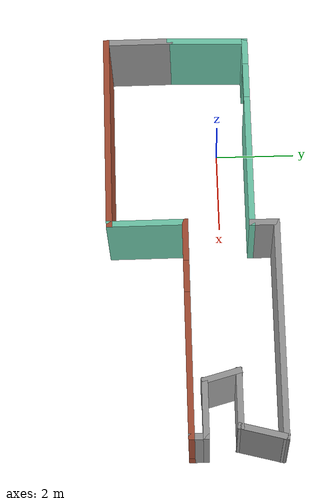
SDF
<?xml version='1.0'?>
<sdf version='1.6'>
  <model name='home'>
    <pose frame=''>2.93952 -0.669794 0 0 -0 0</pose>
    <link name='Wall_0'>
      <collision name='Wall_0_Collision'>
        <geometry>
          <box>
            <size>1.75 0.15 2.5</size>
          </box>
        </geometry>
        <pose frame=''>0 0 1.25 0 -0 0</pose>
      </collision>
      <visual name='Wall_0_Visual'>
        <pose frame=''>0 0 1.25 0 -0 0</pose>
        <geometry>
          <box>
            <size>1.75 0.15 2.5</size>
          </box>
        </geometry>
        <material>
          <script>
            <uri>file://media/materials/scripts/gazebo.material</uri>
            <name>Gazebo/Grey</name>
          </script>
          <ambient>1 1 1 1</ambient>
        </material>
        <meta>
          <layer>0</layer>
        </meta>
      </visual>
      <pose frame=''>-5.13952 -1.25021 0 0 0 -1.5708</pose>
    </link>
    <link name='Wall_1'>
      <collision name='Wall_1_Collision'>
        <geometry>
          <box>
            <size>5 0.15 2.5</size>
          </box>
        </geometry>
        <pose frame=''>0 0 1.25 0 -0 0</pose>
      </collision>
      <visual name='Wall_1_Visual'>
        <pose frame=''>0 0 1.25 0 -0 0</pose>
        <geometry>
          <box>
            <size>5 0.15 2.5</size>
          </box>
        </geometry>
        <material>
          <script>
            <uri>file://media/materials/scripts/gazebo.material</uri>
            <name>Gazebo/Bricks</name>
          </script>
          <ambient>0.996078 0.47451 0.0196078 1</ambient>
        </material>
        <meta>
          <layer>0</layer>
        </meta>
      </visual>
      <pose frame=''>-2.71452 -2.05021 0 0 -0 0</pose>
    </link>
    <link name='Wall_10'>
      <collision name='Wall_10_Collision'>
        <geometry>
          <box>
            <size>0.75 0.15 2.5</size>
          </box>
        </geometry>
        <pose frame=''>0 0 1.25 0 -0 0</pose>
      </collision>
      <visual name='Wall_10_Visual'>
        <pose frame=''>0 0 1.25 0 -0 0</pose>
        <geometry>
          <box>
            <size>0.75 0.15 2.5</size>
          </box>
        </geometry>
        <material>
          <script>
            <uri>file://media/materials/scripts/gazebo.material</uri>
            <name>Gazebo/Grey</name>
          </script>
          <ambient>1 1 1 1</ambient>
        </material>
        <meta>
          <layer>0</layer>
        </meta>
      </visual>
      <pose frame=''>-0.22481 1.73335 0 0 0 -1.5708</pose>
    </link>
    <link name='Wall_11'>
      <pose frame=''>-2.64981 1.43335 0 0 -0 3.14159</pose>
      <visual name='Wall_11_Visual_0'>
        <pose frame=''>-0.79616 0 1.25 0 -0 0</pose>
        <geometry>
          <box>
            <size>3.40768 0.15 2.5</size>
          </box>
        </geometry>
        <material>
          <script>
            <uri>file://media/materials/scripts/gazebo.material</uri>
            <name>Gazebo/Grey</name>
          </script>
          <ambient>0.435294 0.796078 0.67451 1</ambient>
        </material>
        <meta>
          <layer>0</layer>
        </meta>
      </visual>
      <collision name='Wall_11_Collision_0'>
        <geometry>
          <box>
            <size>3.40768 0.15 2.5</size>
          </box>
        </geometry>
        <pose frame=''>-0.79616 0 1.25 0 -0 0</pose>
      </collision>
      <visual name='Wall_11_Visual_1'>
        <pose frame=''>2.15384 0 1.25 0 -0 0</pose>
        <geometry>
          <box>
            <size>0.692319 0.15 2.5</size>
          </box>
        </geometry>
        <material>
          <script>
            <uri>file://media/materials/scripts/gazebo.material</uri>
            <name>Gazebo/Grey</name>
          </script>
          <ambient>0.435294 0.796078 0.67451 1</ambient>
        </material>
        <meta>
          <layer>0</layer>
        </meta>
      </visual>
      <collision name='Wall_11_Collision_1'>
        <geometry>
          <box>
            <size>0.692319 0.15 2.5</size>
          </box>
        </geometry>
        <pose frame=''>2.15384 0 1.25 0 -0 0</pose>
      </collision>
      <visual name='Wall_11_Visual_2'>
        <pose frame=''>1.35768 0 2.25 0 -0 0</pose>
        <geometry>
          <box>
            <size>0.9 0.15 0.5</size>
          </box>
        </geometry>
        <material>
          <script>
            <uri>file://media/materials/scripts/gazebo.material</uri>
            <name>Gazebo/Grey</name>
          </script>
          <ambient>0.435294 0.796078 0.67451 1</ambient>
        </material>
        <meta>
          <layer>0</layer>
        </meta>
      </visual>
      <collision name='Wall_11_Collision_2'>
        <geometry>
          <box>
            <size>0.9 0.15 0.5</size>
          </box>
        </geometry>
        <pose frame=''>1.35768 0 2.25 0 -0 0</pose>
      </collision>
    </link>
    <link name='Wall_12'>
      <collision name='Wall_12_Collision'>
        <geometry>
          <box>
            <size>2.03467 0.15 2.5</size>
          </box>
        </geometry>
        <pose frame=''>0 0 1.25 0 -0 0</pose>
      </collision>
      <visual name='Wall_12_Visual'>
        <pose frame=''>0 0 1.25 0 -0 0</pose>
        <geometry>
          <box>
            <size>2.03467 0.15 2.5</size>
          </box>
        </geometry>
        <material>
          <script>
            <uri>file://media/materials/scripts/gazebo.material</uri>
            <name>Gazebo/Grey</name>
          </script>
          <ambient>0.435294 0.796078 0.67451 1</ambient>
        </material>
        <meta>
          <layer>0</layer>
        </meta>
      </visual>
      <pose frame=''>-5.10716 0.491572 0 0 0 -1.60513</pose>
    </link>
    <link name='Wall_2'>
      <collision name='Wall_2_Collision'>
        <geometry>
          <box>
            <size>2 0.15 2.5</size>
          </box>
        </geometry>
        <pose frame=''>0 0 1.25 0 -0 0</pose>
      </collision>
      <visual name='Wall_2_Visual'>
        <pose frame=''>0 0 1.25 0 -0 0</pose>
        <geometry>
          <box>
            <size>2 0.15 2.5</size>
          </box>
        </geometry>
        <material>
          <script>
            <uri>file://media/materials/scripts/gazebo.material</uri>
            <name>Gazebo/Grey</name>
          </script>
          <ambient>0.435294 0.796078 0.67451 1</ambient>
        </material>
        <meta>
          <layer>0</layer>
        </meta>
      </visual>
      <pose frame=''>-0.289515 -1.12521 0 0 -0 1.5708</pose>
    </link>
    <link name='Wall_3'>
      <pose frame=''>2.38549 -0.200206 0 0 -0 0</pose>
      <visual name='Wall_3_Visual_0'>
        <pose frame=''>-2.21787 0 1.25 0 -0 0</pose>
        <geometry>
          <box>
            <size>1.06426 0.15 2.5</size>
          </box>
        </geometry>
        <material>
          <script>
            <uri>file://media/materials/scripts/gazebo.material</uri>
            <name>Gazebo/Bricks</name>
          </script>
          <ambient>0.996078 0.47451 0.0196078 1</ambient>
        </material>
        <meta>
          <layer>0</layer>
        </meta>
      </visual>
      <collision name='Wall_3_Collision_0'>
        <geometry>
          <box>
            <size>1.06426 0.15 2.5</size>
          </box>
        </geometry>
        <pose frame=''>-2.21787 0 1.25 0 -0 0</pose>
      </collision>
      <visual name='Wall_3_Visual_1'>
        <pose frame=''>0.532131 0 0.25 0 -0 0</pose>
        <geometry>
          <box>
            <size>4.43574 0.15 0.5</size>
          </box>
        </geometry>
        <material>
          <script>
            <uri>file://media/materials/scripts/gazebo.material</uri>
            <name>Gazebo/Bricks</name>
          </script>
          <ambient>0.996078 0.47451 0.0196078 1</ambient>
        </material>
        <meta>
          <layer>0</layer>
        </meta>
      </visual>
      <collision name='Wall_3_Collision_1'>
        <geometry>
          <box>
            <size>4.43574 0.15 0.5</size>
          </box>
        </geometry>
        <pose frame=''>0.532131 0 0.25 0 -0 0</pose>
      </collision>
      <visual name='Wall_3_Visual_2'>
        <pose frame=''>0.932131 0 1.5 0 -0 0</pose>
        <geometry>
          <box>
            <size>3.63574 0.15 2</size>
          </box>
        </geometry>
        <material>
          <script>
            <uri>file://media/materials/scripts/gazebo.material</uri>
            <name>Gazebo/Bricks</name>
          </script>
          <ambient>0.996078 0.47451 0.0196078 1</ambient>
        </material>
        <meta>
          <layer>0</layer>
        </meta>
      </visual>
      <collision name='Wall_3_Collision_2'>
        <geometry>
          <box>
            <size>3.63574 0.15 2</size>
          </box>
        </geometry>
        <pose frame=''>0.932131 0 1.5 0 -0 0</pose>
      </collision>
      <visual name='Wall_3_Visual_3'>
        <pose frame=''>-1.28574 0 1.9 0 -0 0</pose>
        <geometry>
          <box>
            <size>0.8 0.15 1.2</size>
          </box>
        </geometry>
        <material>
          <script>
            <uri>file://media/materials/scripts/gazebo.material</uri>
            <name>Gazebo/Bricks</name>
          </script>
          <ambient>0.996078 0.47451 0.0196078 1</ambient>
        </material>
        <meta>
          <layer>0</layer>
        </meta>
      </visual>
      <collision name='Wall_3_Collision_3'>
        <geometry>
          <box>
            <size>0.8 0.15 1.2</size>
          </box>
        </geometry>
        <pose frame=''>-1.28574 0 1.9 0 -0 0</pose>
      </collision>
    </link>
    <link name='Wall_4'>
      <collision name='Wall_4_Collision'>
        <geometry>
          <box>
            <size>0.5 0.15 2.5</size>
          </box>
        </geometry>
        <pose frame=''>0 0 1.25 0 -0 0</pose>
      </collision>
      <visual name='Wall_4_Visual'>
        <pose frame=''>0 0 1.25 0 -0 0</pose>
        <geometry>
          <box>
            <size>0.5 0.15 2.5</size>
          </box>
        </geometry>
        <material>
          <script>
            <uri>file://media/materials/scripts/gazebo.material</uri>
            <name>Gazebo/Grey</name>
          </script>
          <ambient>1 1 1 1</ambient>
        </material>
        <meta>
          <layer>0</layer>
        </meta>
      </visual>
      <pose frame=''>5.06048 -0.025206 0 0 -0 1.5708</pose>
    </link>
    <link name='Wall_5'>
      <collision name='Wall_5_Collision'>
        <geometry>
          <box>
            <size>1.5 0.15 2.5</size>
          </box>
        </geometry>
        <pose frame=''>0 0 1.25 0 -0 0</pose>
      </collision>
      <visual name='Wall_5_Visual'>
        <pose frame=''>0 0 1.25 0 -0 0</pose>
        <geometry>
          <box>
            <size>1.5 0.15 2.5</size>
          </box>
        </geometry>
        <material>
          <script>
            <uri>file://media/materials/scripts/gazebo.material</uri>
            <name>Gazebo/Grey</name>
          </script>
          <ambient>1 1 1 1</ambient>
        </material>
        <meta>
          <layer>0</layer>
        </meta>
      </visual>
      <pose frame=''>4.38549 0.149794 0 0 -0 3.14159</pose>
    </link>
    <link name='Wall_6'>
      <collision name='Wall_6_Collision'>
        <geometry>
          <box>
            <size>1 0.15 2.5</size>
          </box>
        </geometry>
        <pose frame=''>0 0 1.25 0 -0 0</pose>
      </collision>
      <visual name='Wall_6_Visual'>
        <pose frame=''>0 0 1.25 0 -0 0</pose>
        <geometry>
          <box>
            <size>1 0.15 2.5</size>
          </box>
        </geometry>
        <material>
          <script>
            <uri>file://media/materials/scripts/gazebo.material</uri>
            <name>Gazebo/Grey</name>
          </script>
          <ambient>1 1 1 1</ambient>
        </material>
        <meta>
          <layer>0</layer>
        </meta>
      </visual>
      <pose frame=''>3.60049 0.560313 0 0 -0 1.8326</pose>
    </link>
    <link name='Wall_7'>
      <collision name='Wall_7_Collision'>
        <geometry>
          <box>
            <size>1.5 0.15 2.5</size>
          </box>
        </geometry>
        <pose frame=''>0 0 1.25 0 -0 0</pose>
      </collision>
      <visual name='Wall_7_Visual'>
        <pose frame=''>0 0 1.25 0 -0 0</pose>
        <geometry>
          <box>
            <size>1.5 0.15 2.5</size>
          </box>
        </geometry>
        <material>
          <script>
            <uri>file://media/materials/scripts/gazebo.material</uri>
            <name>Gazebo/Grey</name>
          </script>
          <ambient>1 1 1 1</ambient>
        </material>
        <meta>
          <layer>0</layer>
        </meta>
      </visual>
      <pose frame=''>4.16549 0.970831 0 0 -0 0</pose>
    </link>
    <link name='Wall_8'>
      <collision name='Wall_8_Collision'>
        <geometry>
          <box>
            <size>1.25 0.15 2.5</size>
          </box>
        </geometry>
        <pose frame=''>0 0 1.25 0 -0 0</pose>
      </collision>
      <visual name='Wall_8_Visual'>
        <pose frame=''>0 0 1.25 0 -0 0</pose>
        <geometry>
          <box>
            <size>1.25 0.15 2.5</size>
          </box>
        </geometry>
        <material>
          <script>
            <uri>file://media/materials/scripts/gazebo.material</uri>
            <name>Gazebo/Grey</name>
          </script>
          <ambient>1 1 1 1</ambient>
        </material>
        <meta>
          <layer>0</layer>
        </meta>
      </visual>
      <pose frame=''>4.98284 1.50209 0 0 -0 1.309</pose>
    </link>
    <link name='Wall_9'>
      <collision name='Wall_9_Collision'>
        <geometry>
          <box>
            <size>5.5 0.15 2.5</size>
          </box>
        </geometry>
        <pose frame=''>0 0 1.25 0 -0 0</pose>
      </collision>
      <visual name='Wall_9_Visual'>
        <pose frame=''>0 0 1.25 0 -0 0</pose>
        <geometry>
          <box>
            <size>5.5 0.15 2.5</size>
          </box>
        </geometry>
        <material>
          <script>
            <uri>file://media/materials/scripts/gazebo.material</uri>
            <name>Gazebo/Grey</name>
          </script>
          <ambient>1 1 1 1</ambient>
        </material>
        <meta>
          <layer>0</layer>
        </meta>
      </visual>
      <pose frame=''>2.45019 2.03335 0 0 -0 3.14159</pose>
    </link>
    <static>1</static>
  </model>
</sdf>
